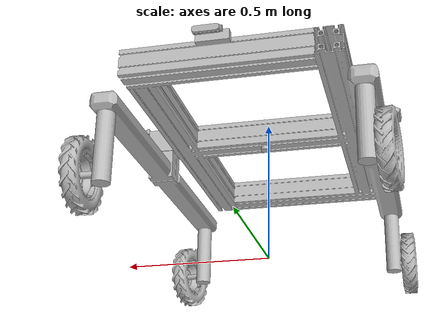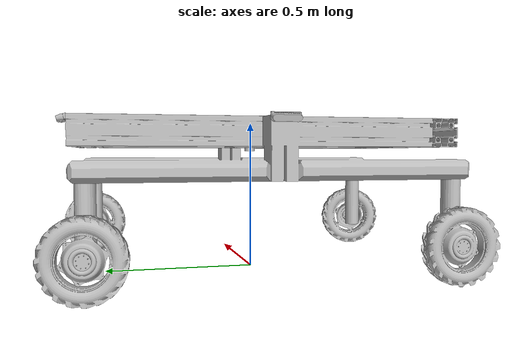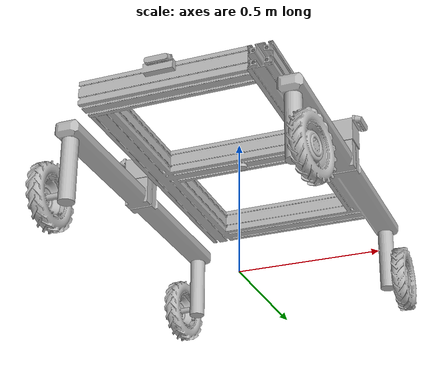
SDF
<sdf version='1.7'>
  <model name='tatekbot'>
    <link name='base_footprint'>
      <inertial>
        <pose>0.000519 -0.000776 0.403042 0 -0 0</pose>
        <mass>21.8073</mass>
        <inertia>
          <ixx>0.752761</ixx>
          <ixy>7.00632e-17</ixy>
          <ixz>-8.13585e-16</ixz>
          <iyy>0.141768</iyy>
          <iyz>4.96982e-07</iyz>
          <izz>0.867611</izz>
        </inertia>
      </inertial>
      <collision name='base_footprint_fixed_joint_lump__base_link_collision'>
        <pose>0 0 0.46238 0 -0 0</pose>
        <geometry>
          <mesh>
            <scale>1 1 1</scale>
            <uri>model://tatekbot/meshes/base_link.STL</uri>
          </mesh>
        </geometry>
      </collision>
      <visual name='base_footprint_fixed_joint_lump__base_link_visual'>
        <pose>0 0 0.46238 0 -0 0</pose>
        <geometry>
          <mesh>
            <scale>1 1 1</scale>
            <uri>model://tatekbot/meshes/base_link.STL</uri>
          </mesh>
        </geometry>
      </visual>
    </link>
    <joint name='BL_steering_joint' type='revolute'>
      <pose relative_to='base_footprint'>0.3925 0.544 0.31888 3.14159 -0 3.14159</pose>
      <parent>base_footprint</parent>
      <child>BL_steering</child>
      <axis>
        <xyz>0 0 1</xyz>
        <limit>
          <lower>-2.1</lower>
          <upper>2.1</upper>
          <effort>5</effort>
          <velocity>6.28</velocity>
        </limit>
        <dynamics>
          <spring_reference>0</spring_reference>
          <spring_stiffness>0</spring_stiffness>
        </dynamics>
      </axis>
    </joint>
    <link name='BL_steering'>
      <pose relative_to='BL_steering_joint'>0 0 0 0 -0 0</pose>
      <inertial>
        <pose>0.000312 -1.1e-05 0.113798 0 -0 0</pose>
        <mass>0.599203</mass>
        <inertia>
          <ixx>0.00274357</ixx>
          <ixy>-1.36105e-07</ixy>
          <ixz>-1.6094e-05</ixz>
          <iyy>0.00273974</iyy>
          <iyz>5.68945e-07</iyz>
          <izz>0.000250812</izz>
        </inertia>
      </inertial>
      <collision name='BL_steering_collision'>
        <pose>0 0 0 0 -0 0</pose>
        <geometry>
          <mesh>
            <scale>1 1 1</scale>
            <uri>model://tatekbot/meshes/BL_steering.STL</uri>
          </mesh>
        </geometry>
      </collision>
      <visual name='BL_steering_visual'>
        <pose>0 0 0 0 -0 0</pose>
        <geometry>
          <mesh>
            <scale>1 1 1</scale>
            <uri>model://tatekbot/meshes/BL_steering.STL</uri>
          </mesh>
        </geometry>
      </visual>
    </link>
    <joint name='BL_motor_joint' type='revolute'>
      <pose relative_to='BL_steering'>-0.01599 0.000566 0.2 0 -0 0</pose>
      <parent>BL_steering</parent>
      <child>BL_motor</child>
      <axis>
        <xyz>0.999374 0.035367 0</xyz>
        <limit>
          <lower>-1e+16</lower>
          <upper>1e+16</upper>
        </limit>
        <dynamics>
          <spring_reference>0</spring_reference>
          <spring_stiffness>0</spring_stiffness>
        </dynamics>
      </axis>
    </joint>
    <link name='BL_motor'>
      <pose relative_to='BL_motor_joint'>0 0 0 0 -0 0</pose>
      <inertial>
        <pose>-0.044184 0.001566 0 0 -0 0</pose>
        <mass>0.303595</mass>
        <inertia>
          <ixx>0.00268278</ixx>
          <ixy>-4.42197e-05</ixy>
          <ixz>-2.92611e-10</ixz>
          <iyy>0.00143481</iyy>
          <iyz>-9.07407e-09</iyz>
          <izz>0.00143333</izz>
        </inertia>
      </inertial>
      <collision name='BL_motor_collision'>
        <pose>0 0 0 0 -0 0</pose>
        <geometry>
          <mesh>
            <scale>1 1 1</scale>
            <uri>model://tatekbot/meshes/BL_motor.STL</uri>
          </mesh>
        </geometry>
      </collision>
      <visual name='BL_motor_visual'>
        <pose>0 0 0 0 -0 0</pose>
        <geometry>
          <mesh>
            <scale>1 1 1</scale>
            <uri>model://tatekbot/meshes/BL_motor.STL</uri>
          </mesh>
        </geometry>
      </visual>
            <surface>
        <friction>
          <ode>
            <mu>100000.0</mu>
            <mu2>100000.0</mu2>
          </ode>
        </friction>
        <contact>
          <ode>
            <min_depth>0.003</min_depth>
          </ode>
        </contact>
      </surface>
    </link>
    <joint name='BR_steering_joint' type='revolute'>
      <pose relative_to='base_footprint'>-0.3925 0.544 0.31888 3.14159 -0 3.14159</pose>
      <parent>base_footprint</parent>
      <child>BR_steering</child>
      <axis>
        <xyz>0 0 1</xyz>
        <limit>
          <lower>-2.1</lower>
          <upper>2.1</upper>
          <effort>5</effort>
          <velocity>6.28</velocity>
        </limit>
        <dynamics>
          <spring_reference>0</spring_reference>
          <spring_stiffness>0</spring_stiffness>
        </dynamics>
      </axis>
    </joint>
    <link name='BR_steering'>
      <pose relative_to='BR_steering_joint'>0 0 0 0 -0 0</pose>
      <inertial>
        <pose>-0.000311 -2.6e-05 0.113798 0 -0 0</pose>
        <mass>0.599203</mass>
        <inertia>
          <ixx>0.00274355</ixx>
          <ixy>3.1557e-07</ixy>
          <ixz>1.60493e-05</ixz>
          <iyy>0.00273976</iyy>
          <iyz>1.32748e-06</iyz>
          <izz>0.000250812</izz>
        </inertia>
      </inertial>
      <collision name='BR_steering_collision'>
        <pose>0 0 0 0 -0 0</pose>
        <geometry>
          <mesh>
            <scale>1 1 1</scale>
            <uri>model://tatekbot/meshes/BR_steering.STL</uri>
          </mesh>
        </geometry>
      </collision>
      <visual name='BR_steering_visual'>
        <pose>0 0 0 0 -0 0</pose>
        <geometry>
          <mesh>
            <scale>1 1 1</scale>
            <uri>model://tatekbot/meshes/BR_steering.STL</uri>
          </mesh>
        </geometry>
      </visual>
    </link>
    <joint name='BR_motor_joint' type='revolute'>
      <pose relative_to='BR_steering'>0.015946 0.001318 0.2 0 -0 0</pose>
      <parent>BR_steering</parent>
      <child>BR_motor</child>
      <axis>
        <xyz>0.9966 0.082393 0</xyz>
        <limit>
          <lower>-1e+16</lower>
          <upper>1e+16</upper>
        </limit>
        <dynamics>
          <spring_reference>0</spring_reference>
          <spring_stiffness>0</spring_stiffness>
        </dynamics>
      </axis>
    </joint>
    <link name='BR_motor'>
      <pose relative_to='BR_motor_joint'>0 0 0 0 -0 0</pose>
      <inertial>
        <pose>0.044062 0.003645 0 0 -0 0</pose>
        <mass>0.303595</mass>
        <inertia>
          <ixx>0.00267585</ixx>
          <ixy>0.000102731</ixy>
          <ixz>5.20432e-10</ixz>
          <iyy>0.00144174</iyy>
          <iyz>-7.81484e-09</iyz>
          <izz>0.00143333</izz>
        </inertia>
      </inertial>
      <collision name='BR_motor_collision'>
        <pose>0 0 0 0 -0 0</pose>
        <geometry>
          <mesh>
            <scale>1 1 1</scale>
            <uri>model://tatekbot/meshes/BR_motor.STL</uri>
          </mesh>
        </geometry>
      </collision>
      <visual name='BR_motor_visual'>
        <pose>0 0 0 0 -0 0</pose>
        <geometry>
          <mesh>
            <scale>1 1 1</scale>
            <uri>model://tatekbot/meshes/BR_motor.STL</uri>
          </mesh>
        </geometry>
      </visual>
            <surface>
        <friction>
          <ode>
            <mu>100000.0</mu>
            <mu2>100000.0</mu2>
          </ode>
        </friction>
        <contact>
          <ode>
            <min_depth>0.003</min_depth>
          </ode>
        </contact>
      </surface>
    </link>
    <joint name='FL_steering_joint' type='revolute'>
      <pose relative_to='base_footprint'>0.3925 -0.55 0.31888 -3.14159 -0 -3.14159</pose>
      <parent>base_footprint</parent>
      <child>FL_steering</child>
      <axis>
        <xyz>0 0 1</xyz>
        <limit>
          <lower>-2.1</lower>
          <upper>2.1</upper>
          <effort>5</effort>
          <velocity>6.28</velocity>
        </limit>
        <dynamics>
          <spring_reference>0</spring_reference>
          <spring_stiffness>0</spring_stiffness>
        </dynamics>
      </axis>
    </joint>
    <link name='FL_steering'>
      <pose relative_to='FL_steering_joint'>0 0 0 0 -0 0</pose>
      <inertial>
        <pose>0.000307 5.5e-05 0.113798 0 -0 0</pose>
        <mass>0.599203</mass>
        <inertia>
          <ixx>0.00274346</ixx>
          <ixy>6.62648e-07</ixy>
          <ixz>-1.58552e-05</ixz>
          <iyy>0.00273985</iyy>
          <iyz>-2.81999e-06</iyz>
          <izz>0.000250812</izz>
        </inertia>
      </inertial>
      <collision name='FL_steering_collision'>
        <pose>0 0 0 0 -0 0</pose>
        <geometry>
          <mesh>
            <scale>1 1 1</scale>
            <uri>model://tatekbot/meshes/FL_steering.STL</uri>
          </mesh>
        </geometry>
      </collision>
      <visual name='FL_steering_visual'>
        <pose>0 0 0 0 -0 0</pose>
        <geometry>
          <mesh>
            <scale>1 1 1</scale>
            <uri>model://tatekbot/meshes/FL_steering.STL</uri>
          </mesh>
        </geometry>
      </visual>
    </link>
    <joint name='FL_motor_joint' type='revolute'>
      <pose relative_to='FL_steering'>-0.015753 -0.002801 0.2 0 -0 0</pose>
      <parent>FL_steering</parent>
      <child>FL_motor</child>
      <axis>
        <xyz>0.984555 0.175073 0</xyz>
        <limit>
          <lower>-1e+16</lower>
          <upper>1e+16</upper>
        </limit>
        <dynamics>
          <spring_reference>0</spring_reference>
          <spring_stiffness>0</spring_stiffness>
        </dynamics>
      </axis>
    </joint>
    <link name='FL_motor'>
      <pose relative_to='FL_motor_joint'>0 0 0 0 -0 0</pose>
      <inertial>
        <pose>-0.04353 -0.007739 2e-06 0 -0 0</pose>
        <mass>0.303595</mass>
        <inertia>
          <ixx>0.002646</ixx>
          <ixy>0.000215644</ixy>
          <ixz>7.52491e-09</ixz>
          <iyy>0.00147164</iyy>
          <iyz>-3.94482e-08</iyz>
          <izz>0.00143328</izz>
        </inertia>
      </inertial>
      <collision name='FL_motor_collision'>
        <pose>0 0 0 0 -0 0</pose>
        <geometry>
          <mesh>
            <scale>1 1 1</scale>
            <uri>model://tatekbot/meshes/FL_motor.STL</uri>
          </mesh>
        </geometry>
      </collision>
      <visual name='FL_motor_visual'>
        <pose>0 0 0 0 -0 0</pose>
        <geometry>
          <mesh>
            <scale>1 1 1</scale>
            <uri>model://tatekbot/meshes/FL_motor.STL</uri>
          </mesh>
        </geometry>
      </visual>
            <surface>
        <friction>
          <ode>
            <mu>100000.0</mu>
            <mu2>100000.0</mu2>
          </ode>
        </friction>
        <contact>
          <ode>
            <min_depth>0.003</min_depth>
          </ode>
        </contact>
      </surface>
    </link>
    <joint name='FR_steering_joint' type='revolute'>
      <pose relative_to='base_footprint'>-0.3925 -0.544 0.31888 3.14159 -0 3.14159</pose>
      <parent>base_footprint</parent>
      <child>FR_steering</child>
      <axis>
        <xyz>0 0 1</xyz>
        <limit>
          <lower>-2.1</lower>
          <upper>2.1</upper>
          <effort>5</effort>
          <velocity>6.28</velocity>
        </limit>
        <dynamics>
          <spring_reference>0</spring_reference>
          <spring_stiffness>0</spring_stiffness>
        </dynamics>
      </axis>
    </joint>
    <link name='FR_steering'>
      <pose relative_to='FR_steering_joint'>0 0 0 0 -0 0</pose>
      <inertial>
        <pose>-0.000312 -0 0.113798 0 -0 0</pose>
        <mass>0.599203</mass>
        <inertia>
          <ixx>0.00274358</ixx>
          <ixy>-1.88907e-10</ixy>
          <ixz>1.61041e-05</ixz>
          <iyy>0.00273973</iyy>
          <iyz>6.14452e-10</iyz>
          <izz>0.000250812</izz>
        </inertia>
      </inertial>
      <collision name='FR_steering_collision'>
        <pose>0 0 0 0 -0 0</pose>
        <geometry>
          <mesh>
            <scale>1 1 1</scale>
            <uri>model://tatekbot/meshes/FR_steering.STL</uri>
          </mesh>
        </geometry>
      </collision>
      <visual name='FR_steering_visual'>
        <pose>0 0 0 0 -0 0</pose>
        <geometry>
          <mesh>
            <scale>1 1 1</scale>
            <uri>model://tatekbot/meshes/FR_steering.STL</uri>
          </mesh>
        </geometry>
      </visual>
    </link>
    <joint name='FR_motor_joint' type='revolute'>
      <pose relative_to='FR_steering'>0.016 0 0.2 0 -0 0</pose>
      <parent>FR_steering</parent>
      <child>FR_motor</child>
      <axis>
        <xyz>1 0 0</xyz>
        <limit>
          <lower>-1e+16</lower>
          <upper>1e+16</upper>
        </limit>
        <dynamics>
          <spring_reference>0</spring_reference>
          <spring_stiffness>0</spring_stiffness>
        </dynamics>
      </axis>
    </joint>
    <link name='FR_motor'>
      <pose relative_to='FR_motor_joint'>0 0 0 0 -0 0</pose>
      <inertial>
        <pose>0.044212 -2e-06 1e-06 0 -0 0</pose>
        <mass>0.303595</mass>
        <inertia>
          <ixx>0.00268434</ixx>
          <ixy>6.54189e-10</ixy>
          <ixz>-3.22975e-10</ixz>
          <iyy>0.00143327</iyy>
          <iyz>3.52871e-08</iyz>
          <izz>0.00143331</izz>
        </inertia>
      </inertial>
      <collision name='FR_motor_collision'>
        <pose>0 0 0 0 -0 0</pose>
        <geometry>
          <mesh>
            <scale>1 1 1</scale>
            <uri>model://tatekbot/meshes/FR_motor.STL</uri>
          </mesh>
        </geometry>
      </collision>
      <visual name='FR_motor_visual'>
        <pose>0 0 0 0 -0 0</pose>
        <geometry>
          <mesh>
            <scale>1 1 1</scale>
            <uri>model://tatekbot/meshes/FR_motor.STL</uri>
          </mesh>
        </geometry>
      </visual>
            <surface>
        <friction>
          <ode>
            <mu>100000.0</mu>
            <mu2>100000.0</mu2>
          </ode>
        </friction>
        <contact>
          <ode>
            <min_depth>0.003</min_depth>
          </ode>
        </contact>
      </surface>
    </link>
    <joint name='back_cam_joint' type='fixed'>
      <pose relative_to='base_footprint'>0.056705 0.62923 0.518193 -3.14159 -0 -3.14159</pose>
      <parent>base_footprint</parent>
      <child>back_cam</child>
      <axis>
        <dynamics>
          <spring_reference>0</spring_reference>
          <spring_stiffness>0</spring_stiffness>
        </dynamics>
        <xyz>0 0 1</xyz>
        <limit>
          <lower>-1e+16</lower>
          <upper>1e+16</upper>
        </limit>
      </axis>
      <physics>
        <ode>
          <limit>
            <cfm>0</cfm>
            <erp>0.2</erp>
          </limit>
        </ode>
      </physics>
    </joint>
    <link name='back_cam'>
      <pose relative_to='back_cam_joint'>0 0 0 0 -0 0</pose>
      <inertial>
        <pose>0.000626 0.006714 0.001413 0 -0 0</pose>
        <mass>0.150746</mass>
        <inertia>
          <ixx>1.49886e-05</ixx>
          <ixy>7.80617e-07</ixy>
          <ixz>3.47097e-07</ixz>
          <iyy>0.000100223</iyy>
          <iyz>-1.82861e-06</iyz>
          <izz>0.000102534</izz>
        </inertia>
      </inertial>
      <collision name='back_cam_collision'>
        <pose>0 0 0 0 -0 0</pose>
        <geometry>
          <mesh>
            <scale>1 1 1</scale>
            <uri>model://tatekbot/meshes/back_cam.STL</uri>
          </mesh>
        </geometry>
      </collision>
      <visual name='back_cam_visual'>
        <pose>0 0 0 0 -0 0</pose>
        <geometry>
          <mesh>
            <scale>1 1 1</scale>
            <uri>model://tatekbot/meshes/back_cam.STL</uri>
          </mesh>
        </geometry>
      </visual>
    </link>
    <joint name='bottom_cam_joint' type='fixed'>
      <pose relative_to='base_footprint'>0 0 0.41738 -3.14159 -0 -3.14159</pose>
      <parent>base_footprint</parent>
      <child>bottom_cam</child>
      <axis>
        <dynamics>
          <spring_reference>0</spring_reference>
          <spring_stiffness>0</spring_stiffness>
        </dynamics>
        <xyz>0 0 1</xyz>
        <limit>
          <lower>-1e+16</lower>
          <upper>1e+16</upper>
        </limit>
      </axis>
      <physics>
        <ode>
          <limit>
            <cfm>0</cfm>
            <erp>0.2</erp>
          </limit>
        </ode>
      </physics>
    </joint>
    <link name='bottom_cam'>
      <pose relative_to='bottom_cam_joint'>0 0 0.0115 0 -1.5708 0</pose>
      <inertial>
        <pose>-0 0 0.0115 0 1.5708 0</pose>
        <mass>0.0221286</mass>
        <inertia>
          <ixx>2.66972e-06</ixx>
          <ixy>1.21761e-22</ixy>
          <ixz>9.37331e-39</ixz>
          <iyy>2.66972e-06</iyy>
          <iyz>2.02935e-23</iyz>
          <izz>3.38844e-06</izz>
        </inertia>
      </inertial>
      <collision name='bottom_cam_collision'>
        <pose>-0 0 0.0115 0 -1.5708 0</pose>
        <geometry>
          <mesh>
            <scale>1 1 1</scale>
            <uri>model://tatekbot/meshes/bottom_cam.STL</uri>
          </mesh>
        </geometry>
      </collision>
      <visual name='bottom_cam_visual'>
        <pose>-0 0 0.0115 0 -1.5708 0</pose>
        <geometry>
          <mesh>
            <scale>1 1 1</scale>
            <uri>model://tatekbot/meshes/bottom_cam.STL</uri>
          </mesh>
        </geometry>
      </visual>

      <sensor type='camera' name='bottom_cam'>
    <always_on>true</always_on>

    <visualize>1</visualize>
    <update_rate>15.0</update_rate>
    <camera name='bottom'>
      <horizontal_fov>1.46608</horizontal_fov>
      <image>
        <width>540</width>
        <height>405</height>
        <format>R8G8B8</format>
      </image>
      <distortion>
        <k1>0.0</k1>
        <k2>0.0</k2>
        <k3>0.0</k3>
        <p1>0.0</p1>
        <p2>0.0</p2>
        <center>0.5 0.5</center>
      </distortion>
    </camera>
    <plugin name='gazebo_ros_camera' filename='libgazebo_ros_camera.so'>
      <ros>
        <remapping>~/image_raw:=image_raw</remapping>
        <remapping>~/camera_info:=camera_info</remapping>
      </ros>
      <camera_name>bottom</camera_name>
      <frame_name>bottom</frame_name>
      <hack_baseline>0.2</hack_baseline>
    </plugin>
  </sensor>

    </link>
    <joint name='front_camera_joint' type='fixed'>
      <pose relative_to='base_footprint'>-0.037644 -0.62923 0.501357 -3.14159 -0 -3.14159</pose>
      <parent>base_footprint</parent>
      <child>front_camera</child>
      <axis>
        <dynamics>
          <spring_reference>0</spring_reference>
          <spring_stiffness>0</spring_stiffness>
        </dynamics>
        <xyz>0 0 1</xyz>
        <limit>
          <lower>-1e+16</lower>
          <upper>1e+16</upper>
        </limit>
      </axis>
      <physics>
        <ode>
          <limit>
            <cfm>0</cfm>
            <erp>0.2</erp>
          </limit>
        </ode>
      </physics>
    </joint>
    <link name='front_camera'>
      <pose relative_to='front_camera_joint'>0 0 0 0 -0 0</pose>
      <inertial>
        <pose>-0.000626 -0.006714 0.001413 0 -0 0</pose>
        <mass>0.150746</mass>
        <inertia>
          <ixx>1.49886e-05</ixx>
          <ixy>7.80617e-07</ixy>
          <ixz>-3.47097e-07</ixz>
          <iyy>0.000100223</iyy>
          <iyz>1.82861e-06</iyz>
          <izz>0.000102534</izz>
        </inertia>
      </inertial>
      <collision name='front_camera_collision'>
        <pose>0 0 0 0 -0 0</pose>
        <geometry>
          <mesh>
            <scale>1 1 1</scale>
            <uri>model://tatekbot/meshes/front_camera.STL</uri>
          </mesh>
        </geometry>
      </collision>
      <visual name='front_camera_visual'>
        <pose>0 0 0 0 -0 0</pose>
        <geometry>
          <mesh>
            <scale>1 1 1</scale>
            <uri>model://tatekbot/meshes/front_camera.STL</uri>
          </mesh>
        </geometry>
      </visual>

      <sensor name="intel_realsense_r200_depth" type="depth">
        <always_on>1</always_on>
        <update_rate>1</update_rate>
        <pose>-0.069 -0.3 -0.404 3.14159 -1.1 -1.570795</pose>
        <camera name="realsense_depth_camera">
        </camera>
        <horizontal_fov>1.794</horizontal_fov>
	<plugin name="intel_realsense_r200_depth_driver" filename="libgazebo_ros_camera.so">
            <ros>
            </ros>
            <camera_name>intel_realsense_r200_depth</camera_name>
            <frame_name>realsense_depth_frame</frame_name>
            <hack_baseline>0.07</hack_baseline>
            <min_depth>0.001</min_depth>
          </plugin>
      </sensor>

      <sensor name="intel_realsense_r200_rgb" type="camera">
        <always_on>true</always_on>
        <visualize>true</visualize>
        <update_rate>30</update_rate>
	<pose>-0.069 -0.3 -0.404 3.14159 -1.1 -1.570795</pose>
        <camera name="realsense_rgb_camera">
          <horizontal_fov>1.794</horizontal_fov>
          <image>
            <width>1280</width>
            <height>720</height>
            <format>R8G8B8</format>
          </image>
          <clip>
            <near>0.02</near>
            <far>10</far>
          </clip>
          <noise>
            <type>gaussian</type>
            <mean>0.0</mean>
            <stddev>0.007</stddev>
          </noise>
        </camera>
          <plugin name="intel_realsense_r200_rgb_driver" filename="libgazebo_ros_camera.so">
            <ros>
            </ros>
            <camera_name>intel_realsense_r200_rgb</camera_name>
            <frame_name>realsense_rgb_frame</frame_name>
            <hack_baseline>0.07</hack_baseline>
          </plugin>
      </sensor>

</link>

    <joint name='left_cam_joint' type='fixed'>
      <pose relative_to='base_footprint'>0.44923 -0.001315 0.500693 -3.14159 -0 -3.14159</pose>
      <parent>base_footprint</parent>
      <child>left_cam</child>
      <axis>
        <dynamics>
          <spring_reference>0</spring_reference>
          <spring_stiffness>0</spring_stiffness>
        </dynamics>
        <xyz>0 0 1</xyz>
        <limit>
          <lower>-1e+16</lower>
          <upper>1e+16</upper>
        </limit>
      </axis>
      <physics>
        <ode>
          <limit>
            <cfm>0</cfm>
            <erp>0.2</erp>
          </limit>
        </ode>
      </physics>
    </joint>
    <link name='left_cam'>
      <pose relative_to='left_cam_joint'>0 0 0 0 -0 0</pose>
      <inertial>
        <pose>-0.006714 0.000626 0.001413 0 -0 0</pose>
        <mass>0.150746</mass>
        <inertia>
          <ixx>0.000100223</ixx>
          <ixy>-7.80618e-07</ixy>
          <ixz>1.82861e-06</ixz>
          <iyy>1.49886e-05</iyy>
          <iyz>3.47097e-07</iyz>
          <izz>0.000102534</izz>
        </inertia>
      </inertial>
      <collision name='left_cam_collision'>
        <pose>0 0 0 0 -0 0</pose>
        <geometry>
          <mesh>
            <scale>1 1 1</scale>
            <uri>model://tatekbot/meshes/left_cam.STL</uri>
          </mesh>
        </geometry>
      </collision>
      <visual name='left_cam_visual'>
        <pose>0 0 0 0 -0 0</pose>
        <geometry>
          <mesh>
            <scale>1 1 1</scale>
            <uri>model://tatekbot/meshes/left_cam.STL</uri>
          </mesh>
        </geometry>
      </visual>
    </link>
    <joint name='right_cam_joint' type='fixed'>
      <pose relative_to='base_footprint'>-0.44923 0.003034 0.500693 -3.14159 -0 -3.14159</pose>
      <parent>base_footprint</parent>
      <child>right_cam</child>
      <axis>
        <dynamics>
          <spring_reference>0</spring_reference>
          <spring_stiffness>0</spring_stiffness>
        </dynamics>
        <xyz>0 0 1</xyz>
        <limit>
          <lower>-1e+16</lower>
          <upper>1e+16</upper>
        </limit>
      </axis>
      <physics>
        <ode>
          <limit>
            <cfm>0</cfm>
            <erp>0.2</erp>
          </limit>
        </ode>
      </physics>
    </joint>
    <link name='right_cam'>
      <pose relative_to='right_cam_joint'>0 0 0 0 -0 0</pose>
      <inertial>
        <pose>0.006714 -0.000626 0.001413 0 -0 0</pose>
        <mass>0.150746</mass>
        <inertia>
          <ixx>0.000100223</ixx>
          <ixy>-7.80619e-07</ixy>
          <ixz>-1.82861e-06</ixz>
          <iyy>1.49886e-05</iyy>
          <iyz>-3.47097e-07</iyz>
          <izz>0.000102534</izz>
        </inertia>
      </inertial>
      <collision name='right_cam_collision'>
        <pose>0 0 0 0 -0 0</pose>
        <geometry>
          <mesh>
            <scale>1 1 1</scale>
            <uri>model://tatekbot/meshes/right_cam.STL</uri>
          </mesh>
        </geometry>
      </collision>
      <visual name='right_cam_visual'>
        <pose>0 0 0 0 -0 0</pose>
        <geometry>
          <mesh>
            <scale>1 1 1</scale>
            <uri>model://tatekbot/meshes/right_cam.STL</uri>
          </mesh>
        </geometry>
      </visual>
    </link>

    <static>0</static>

    <plugin name="four_ws_robot_joint_state" filename="libgazebo_ros_joint_state_publisher.so">
      <ros>
          <remapping>~/out:=joint_states</remapping>
      </ros>
      <update_rate>30</update_rate>
      <joint_name>FL_motor_joint</joint_name>
      <joint_name>FR_motor_joint</joint_name>
      <joint_name>BL_motor_joint</joint_name>
      <joint_name>BR_motor_joint</joint_name>
      <joint_name>FL_steering_joint</joint_name>
      <joint_name>FR_steering_joint</joint_name>
      <joint_name>BL_steering_joint</joint_name>
      <joint_name>BR_steering_joint</joint_name>
    </plugin>

    <ros2_control name="GazeboSystem" type="system">
    <hardware>
      <plugin>gazebo_ros2_control/GazeboSystem</plugin>
    </hardware>

    <joint name="FL_motor_joint">
      <command_interface name="velocity">
        <param name="min">-3.14</param>
        <param name="max">3.14</param>
      </command_interface>
      <state_interface name="velocity"/>
      <state_interface name="effort"/>
      <state_interface name="position"/>
    </joint>

    <joint name="FR_motor_joint">
      <command_interface name="velocity">
        <param name="min">-3.14</param>
        <param name="max">3.14</param>
      </command_interface>
      <state_interface name="velocity"/>
      <state_interface name="effort"/>
      <state_interface name="position"/>
    </joint>

    <joint name="BL_motor_joint">
      <command_interface name="velocity">
        <param name="min">-3.14</param>
        <param name="max">3.14</param>
      </command_interface>
      <state_interface name="velocity"/>
      <state_interface name="effort"/>
      <state_interface name="position"/>
    </joint>

    <joint name="BR_motor_joint">
      <command_interface name="velocity">
        <param name="min">-3.14</param>
        <param name="max">3.14</param>
      </command_interface>
      <state_interface name="velocity"/>
      <state_interface name="effort"/>
      <state_interface name="position"/>
    </joint>

    <joint name="FL_steering_joint">
      <command_interface name="position">
        <param name="min">-3.14</param>
        <param name="max">3.14</param>
      </command_interface>
      <state_interface name="position">
        <param name="initial_value">0</param>
      </state_interface>
      <state_interface name="position"/>
      <state_interface name="velocity"/>
      <state_interface name="effort"/>
    </joint>

    <joint name="FR_steering_joint">
      <command_interface name="position">
        <param name="min">-3.14</param>
        <param name="max">3.14</param>
      </command_interface>
      <state_interface name="position">
        <param name="initial_value">0</param>
      </state_interface>
      <state_interface name="position"/>
      <state_interface name="velocity"/>
      <state_interface name="effort"/>
    </joint>

    <joint name="BL_steering_joint">
      <command_interface name="position">
        <param name="min">-3.14</param>
        <param name="max">3.14</param>
      </command_interface>
      <state_interface name="position">
        <param name="initial_value">0</param>
      </state_interface>
      <state_interface name="position"/>
      <state_interface name="velocity"/>
      <state_interface name="effort"/>
    </joint>

    <joint name="BR_steering_joint">
      <command_interface name="position">
        <param name="min">-3.14</param>
        <param name="max">3.14</param>
      </command_interface>
      <state_interface name="position">
        <param name="initial_value">0</param>
      </state_interface>
      <state_interface name="position"/>
      <state_interface name="velocity"/>
      <state_interface name="effort"/>
    </joint>
  </ros2_control>

  <plugin name="gazebo_ros2_control" filename="libgazebo_ros2_control.so">
    <parameters>/home/tatek/tatekbot_ws/install/tatekbot_description/share/tatekbot_description/models/tatekbot/config/controllers.yaml</parameters>
  </plugin>

  </model>
</sdf>
